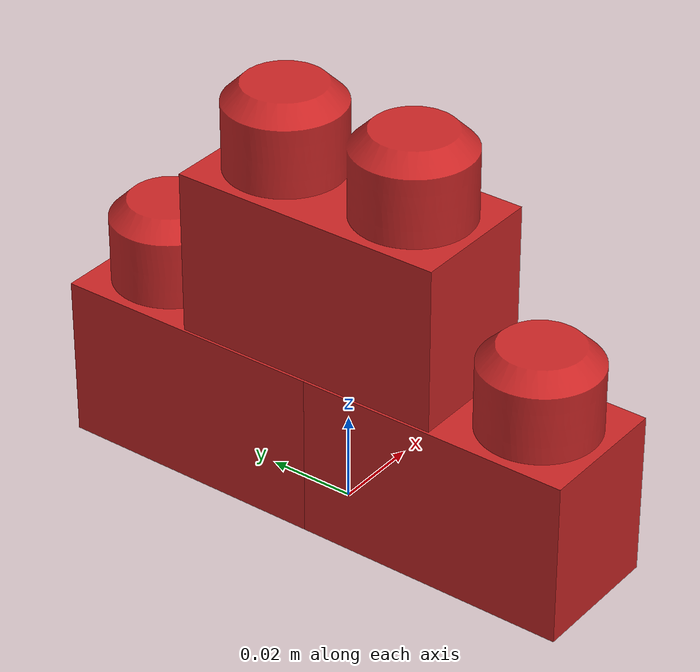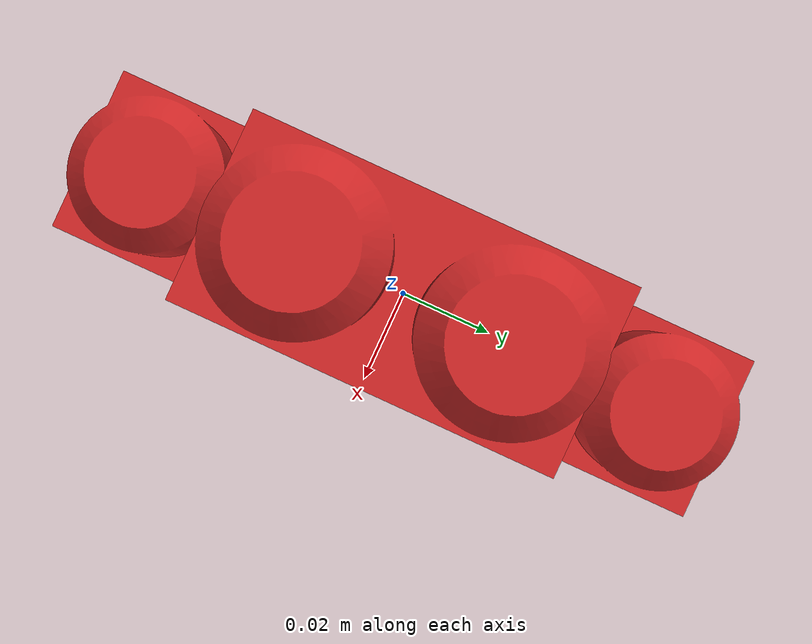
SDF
<?xml version='1.0'?>
<sdf version='1.7'>
	<model name='build-2'>
		<include>
			<name>X1-Y2-Z2_1</name>
			<pose>0 -0.0315 0.0285 0 0 0</pose>
			<uri>model://X1-Y2-Z2</uri>
		</include>
		<include>
			<name>X1-Y2-Z2_2</name>
			<pose>0 0.0315 0.0285 0 0 0</pose>
			<uri>model://X1-Y2-Z2</uri>
		</include>
		<include>
			<name>X1-Y2-Z2_3</name>
			<pose>0 0 0.0665 0 0 0</pose>
			<uri>model://X1-Y2-Z2</uri>
		</include>

		<joint name='j1' type='fixed'>
			<parent>X1-Y2-Z2_1</parent>
			<child>X1-Y2-Z2_3</child>
		</joint>
		<joint name='j2' type='fixed'>
			<parent>X1-Y2-Z2_2</parent>
			<child>X1-Y2-Z2_3</child>
		</joint>
	</model>

</sdf>

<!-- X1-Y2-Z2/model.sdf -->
<sdf version="1.4">
  <model name="X1-Y2-Z2">
    <static>false</static>
    <link name="link">
      <pose>0 0 0 0 0 0</pose>
      <inertial>
        <pose>0 0 0.029775e-02 0 0 0</pose>
        <mass>14.626943e-6</mass>
        <inertia>
          <ixx>100.1e-10</ixx>
          <ixy>0.00044e-10</ixy>
          <ixz>-0.0027e-10</ixz>
          <iyy>58.5e-10</iyy>
          <iyz>-0.00236e-10</iyz>
          <izz>79.66e-10</izz>
        </inertia>
      </inertial>

      <visual name="visual">
        <geometry>
          <mesh>
            <uri>model://X1-Y2-Z2/meshes/X1-Y2-Z2.stl</uri>
          </mesh>
        </geometry>
        <material>
          <script>
            <uri>file://media/materials/scripts/gazebo.material</uri>
            <name>Gazebo/Red</name>
          </script>
        </material>
      </visual>

      <collision name="collision">
        <geometry>
          <mesh>
            <uri>model://X1-Y2-Z2/meshes/X1-Y2-Z2.stl</uri>
          </mesh>
        </geometry>
      </collision>
    </link>
  </model>
</sdf>
